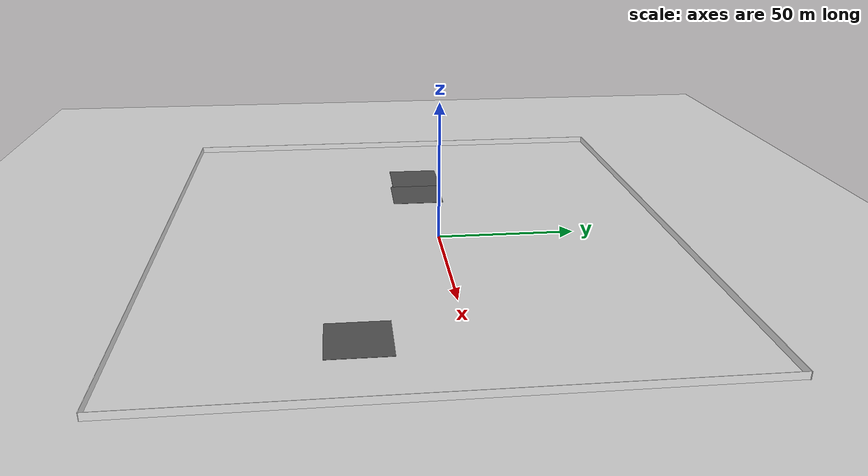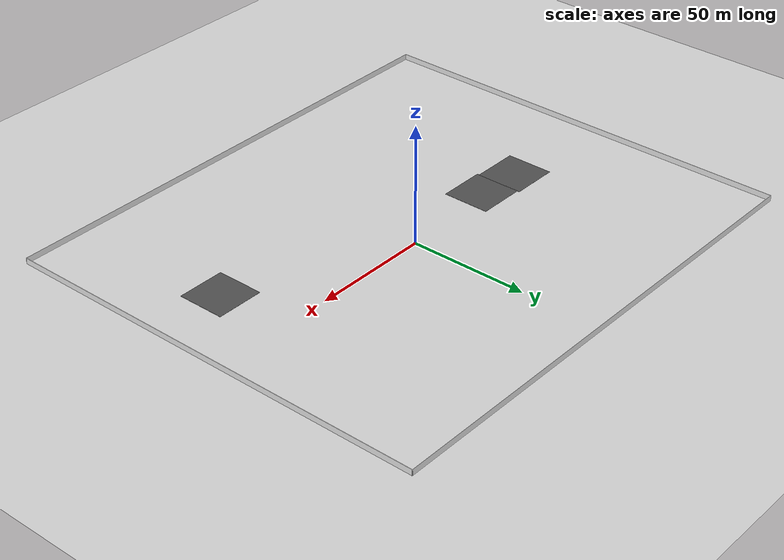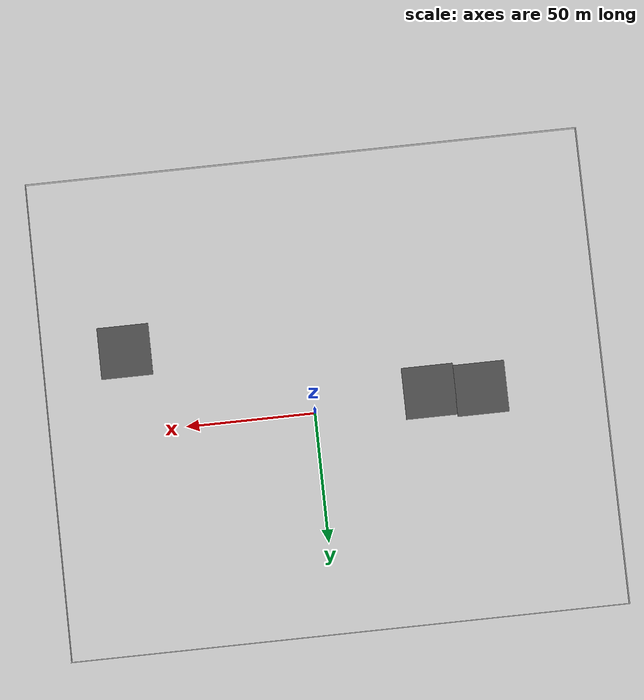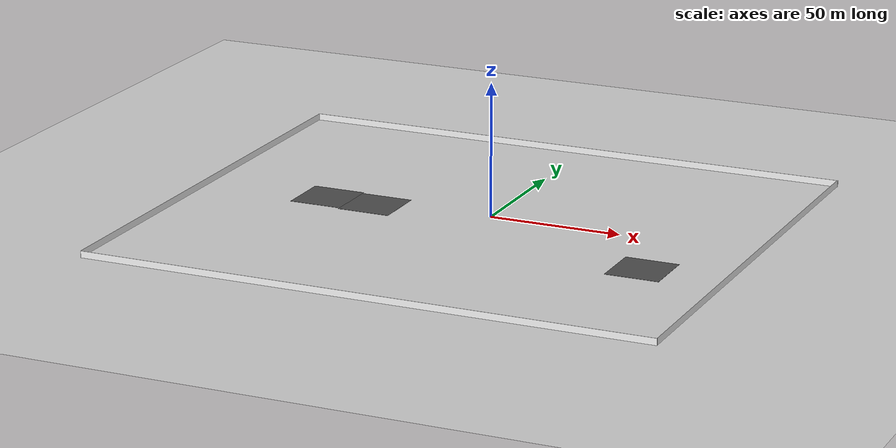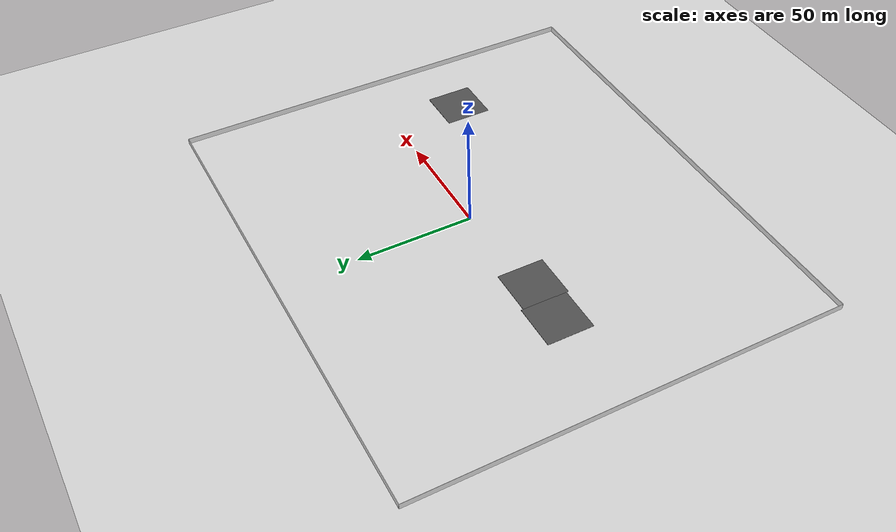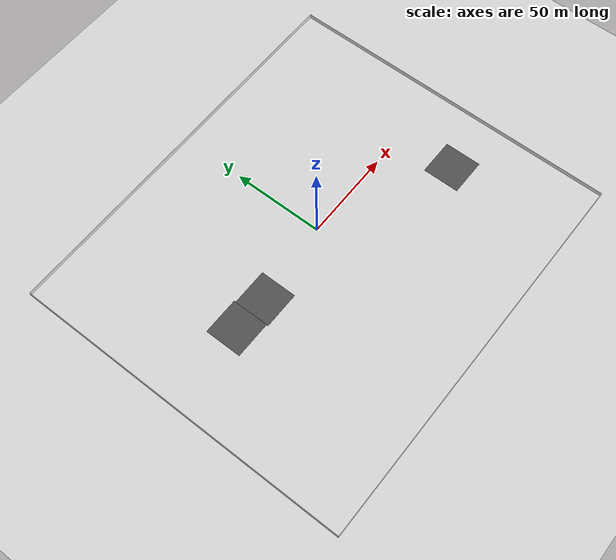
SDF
<sdf version="1.6">
 <world name="default">
  <model name="borders_0">
   <pose>-4.565 -7.31339 0 0 -0 0</pose>
   <link name="Wall_60">
    <collision name="Wall_60_Collision">
     <geometry><box><size>185.25 0.15 2.5</size></box></geometry>
     <pose>0 0 1.25 0 -0 0</pose>
    </collision>
    <visual name="Wall_60_Visual">
     <pose>0 0 1.25 0 -0 0</pose>
     <geometry><box><size>185.25 0.15 2.5</size></box></geometry>
     <material>
      <script>
       <uri>model://office_env/materials/scripts</uri>
       <uri>model://office_env/materials/textures</uri>
       <name>wall</name>
      </script>
      <ambient>1 1 1 1</ambient>
     </material>
    </visual>
    <pose>107.175 0 0 0 0 -1.5708</pose>
   </link>
   <link name="Wall_61">
    <collision name="Wall_61_Collision">
     <geometry><box><size>214.75 0.15 2.5</size></box></geometry>
     <pose>0 0 1.25 0 -0 0</pose>
    </collision>
    <visual name="Wall_61_Visual">
     <pose>0 0 1.25 0 -0 0</pose>
     <geometry><box><size>214.75 0.15 2.5</size></box></geometry>
     <material>
      <script>
       <uri>model://office_env/materials/scripts</uri>
       <uri>model://office_env/materials/textures</uri>
       <name>wall</name>
      </script>
      <ambient>1 1 1 1</ambient>
     </material>
    </visual>
    <pose>-0.124995 -92.55 0 0 -0 3.14159</pose>
   </link>
   <link name="Wall_62">
    <collision name="Wall_62_Collision">
     <geometry><box><size>185.25 0.15 2.5</size></box></geometry>
     <pose>0 0 1.25 0 -0 0</pose>
    </collision>
    <visual name="Wall_62_Visual">
     <pose>0 0 1.25 0 -0 0</pose>
     <geometry><box><size>185.25 0.15 2.5</size></box></geometry>
     <material>
      <script>
       <uri>model://office_env/materials/scripts</uri>
       <uri>model://office_env/materials/textures</uri>
       <name>wall</name>
      </script>
      <ambient>1 1 1 1</ambient>
     </material>
    </visual>
    <pose>-107.425 0 0 0 -0 1.5708</pose>
   </link>
   <link name="Wall_64">
    <collision name="Wall_64_Collision">
     <geometry><box><size>215 0.15 2.5</size></box></geometry>
     <pose>0 0 1.25 0 -0 0</pose>
    </collision>
    <visual name="Wall_64_Visual">
     <pose>0 0 1.25 0 -0 0</pose>
     <geometry><box><size>215 0.15 2.5</size></box></geometry>
     <material>
      <script>
       <uri>model://office_env/materials/scripts</uri>
       <uri>model://office_env/materials/textures</uri>
       <name>wall</name>
      </script>
      <ambient>1 1 1 1</ambient>
     </material>
    </visual>
    <pose>5e-06 92.55 0 0 -0 0</pose>
   </link>
   <static>1</static>
  </model>
  <model name="asphalt_plane_4">
   <static>1</static>
   <link name="link">
    <collision name="collision"><geometry><box><size>20 20 0.1</size></box></geometry></collision>
    <visual name="visual">
     <cast_shadows>0</cast_shadows>
     <geometry><box><size>20 20 0.1</size></box></geometry>
     <material>
      <script>
       <uri>model://asphalt_plane/materials/scripts</uri>
       <uri>model://asphalt_plane/materials/textures</uri>
       <name>vrc/asphalt</name>
      </script>
     </material>
    </visual>
   </link>
   <pose>-64.5183 -2.94145 0 0 -0 0</pose>
  </model>
  <model name="asphalt_plane_11">
   <static>1</static>
   <link name="link">
    <collision name="collision"><geometry><box><size>20 20 0.1</size></box></geometry></collision>
    <visual name="visual">
     <cast_shadows>0</cast_shadows>
     <geometry><box><size>20 20 0.1</size></box></geometry>
     <material>
      <script>
       <uri>model://asphalt_plane/materials/scripts</uri>
       <uri>model://asphalt_plane/materials/textures</uri>
       <name>vrc/asphalt</name>
      </script>
     </material>
    </visual>
   </link>
   <pose>-44.6674 -3.87186 0 0 -0 0</pose>
  </model>
  <model name="asphalt_plane">
   <static>1</static>
   <link name="link">
    <collision name="collision"><geometry><box><size>20 20 0.1</size></box></geometry></collision>
    <visual name="visual">
     <cast_shadows>0</cast_shadows>
     <geometry><box><size>20 20 0.1</size></box></geometry>
     <material>
      <script>
       <uri>model://asphalt_plane/materials/scripts</uri>
       <uri>model://asphalt_plane/materials/textures</uri>
       <name>vrc/asphalt</name>
      </script>
     </material>
    </visual>
   </link>
   <pose>70.7475 -31.5972 0 0 -0 0</pose>
  </model>
  <model name="my_ground_plane">
   <static>1</static>
   <link name="link">
    <collision name="collision">
     <geometry><plane><normal>0 0 1</normal><size>300 300</size></plane></geometry>
     <surface><friction><ode><mu>100</mu><mu2>50</mu2></ode></friction></surface>
    </collision>
    <visual name="visual">
     <cast_shadows>0</cast_shadows>
     <geometry><plane><normal>0 0 1</normal><size>300 300</size></plane></geometry>
     <material>
      <script>
       <uri>model://grass_1/materials/scripts/my_ground_plane.material</uri>
       <name>MyGroundPlane/Image</name>
      </script>
     </material>
    </visual>
   </link>
   <pose>-0.163313 -0.271667 0 0 -0 0</pose>
  </model>
 </world>
</sdf>
